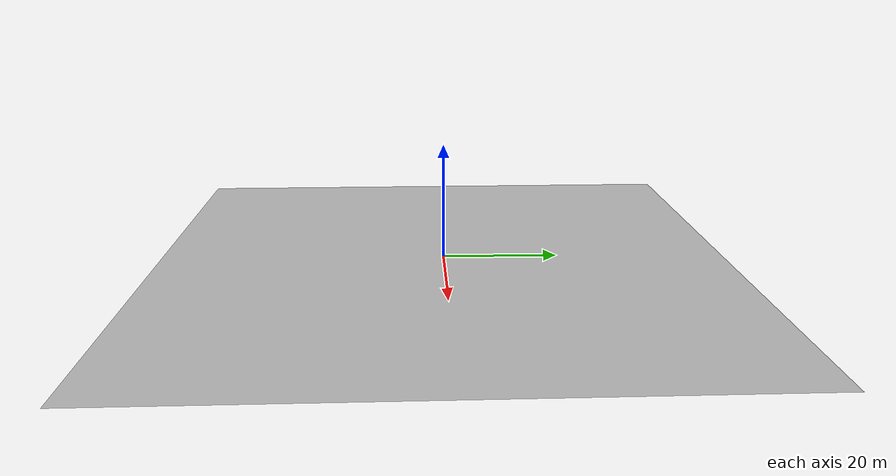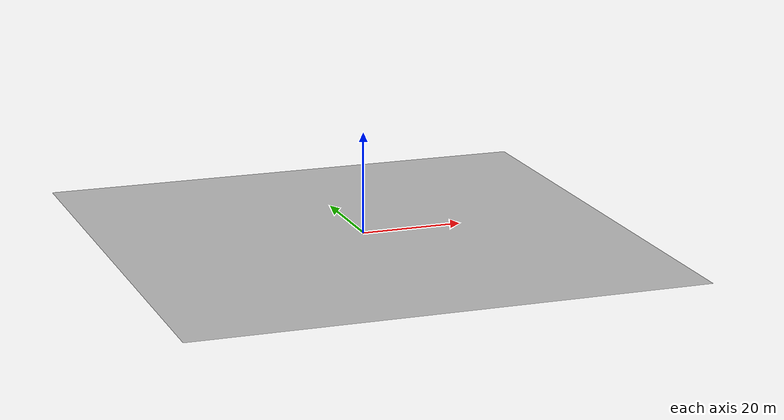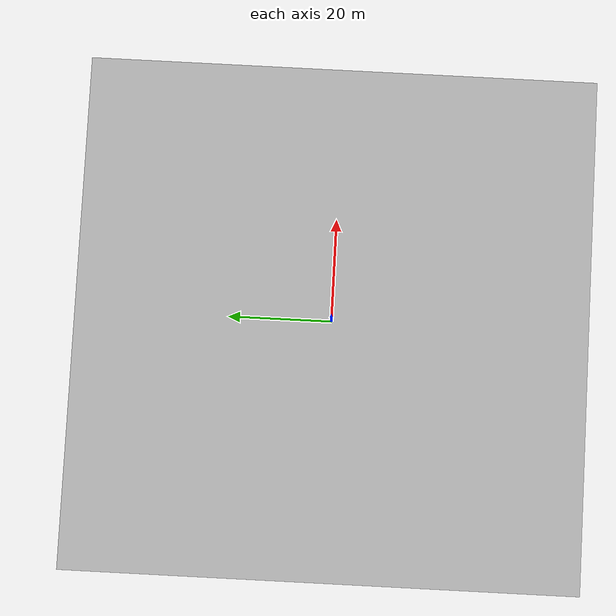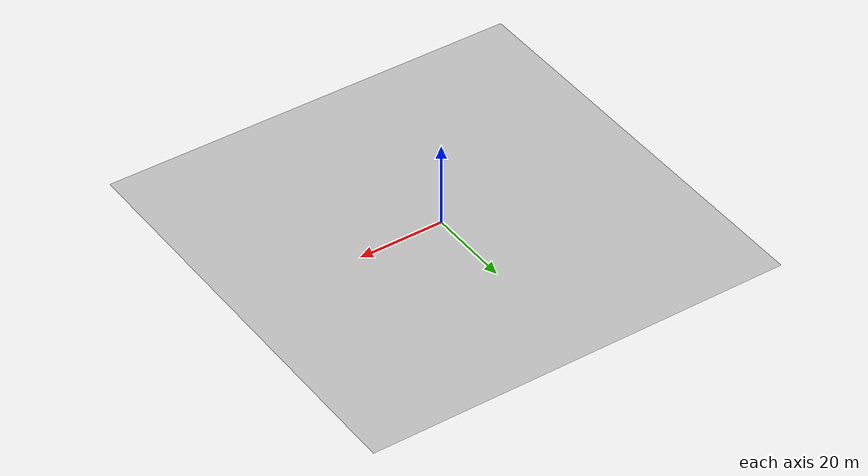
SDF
<?xml version="1.0" ?>
<sdf version="1.5">
  <model name="ground_plane">
    <static>true</static>
    <link name="link">
      <collision name="collision">
        <geometry>
          <mesh><uri>package://manipulator/worlds/meshes/Ground_Plane.dae</uri></mesh>
        </geometry>
      </collision>
      <visual name="visual">
        <geometry>
          <mesh><uri>package://manipulator/worlds/meshes/Ground_Plane.dae</uri></mesh>
        </geometry>
        <cast_shadows>true</cast_shadows>
      </visual>
    </link>
  </model>
</sdf>
